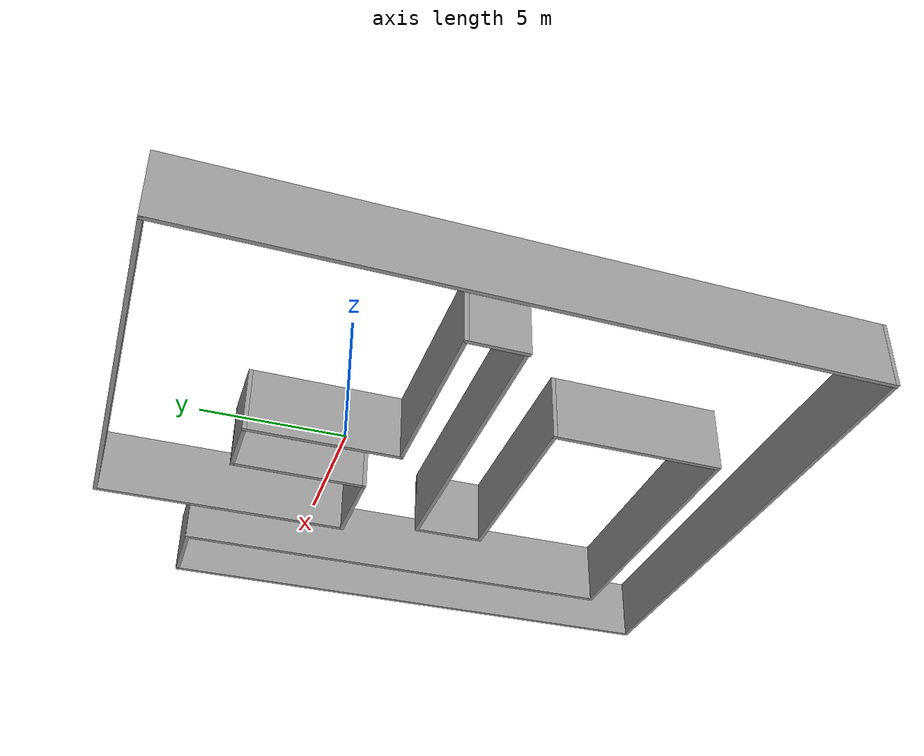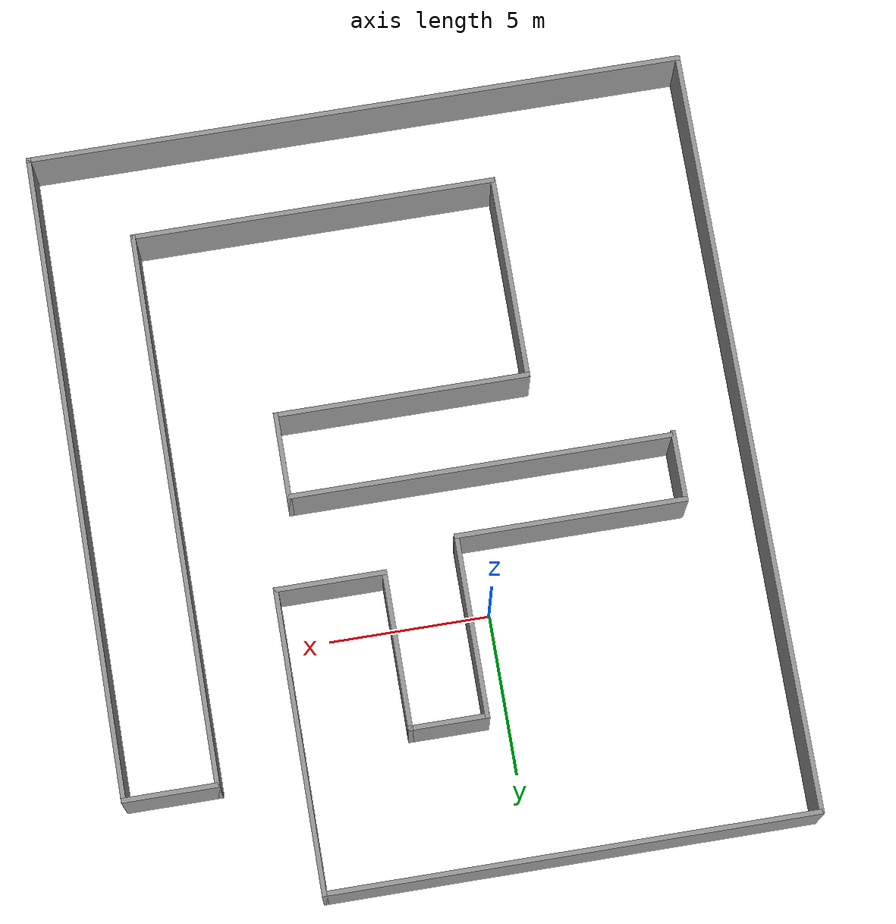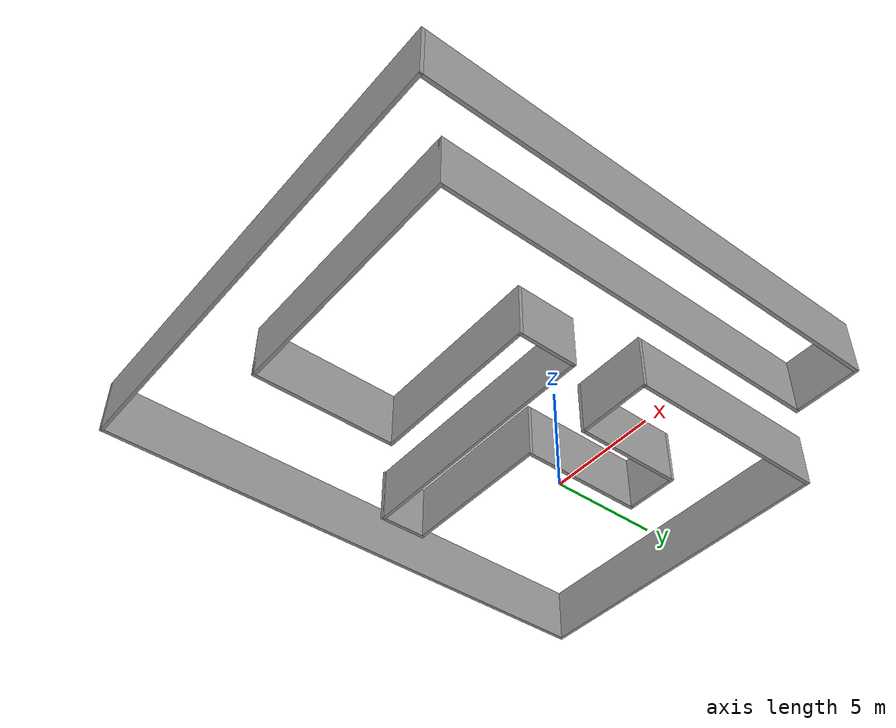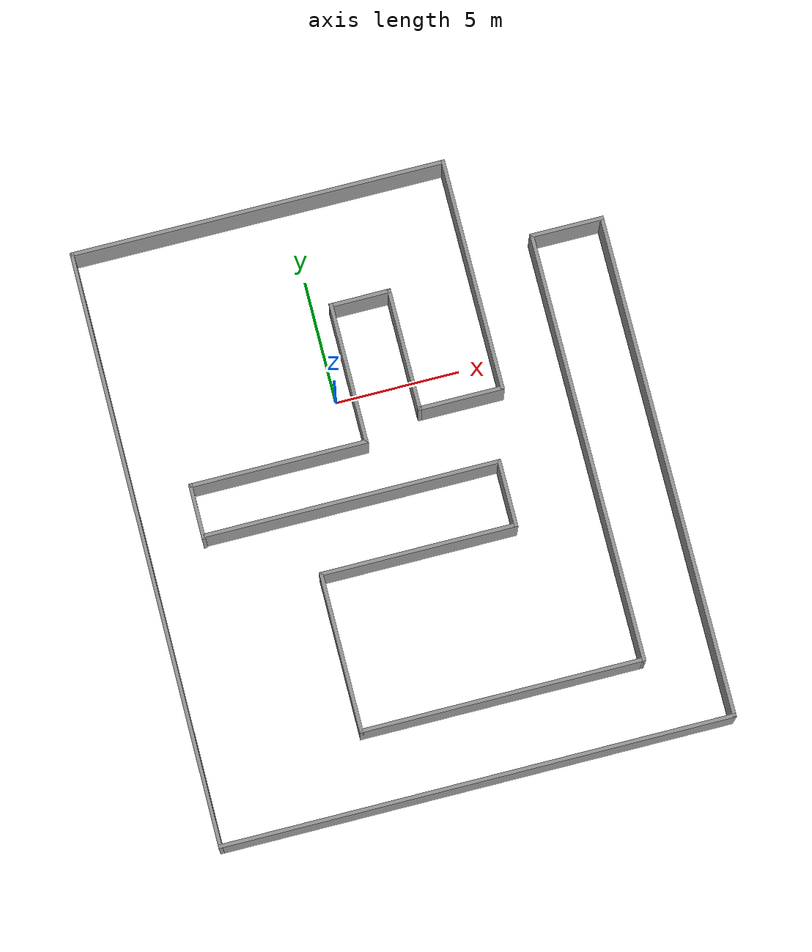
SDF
<?xml version='1.0'?>
<sdf version='1.7'>
  <model name='world1'>
    <pose>1.5821 -4.14424 0 0 -0 0</pose>
    <link name='Wall_0'>
      <collision name='Wall_0_Collision'>
        <geometry>
          <box>
            <size>12 0.15 2.5</size>
          </box>
        </geometry>
        <pose>0 0 1.25 0 -0 0</pose>
      </collision>
      <visual name='Wall_0_Visual'>
        <pose>0 0 1.25 0 -0 0</pose>
        <geometry>
          <box>
            <size>12 0.15 2.5</size>
          </box>
        </geometry>
        <material>
          <script>
            <uri>file://media/materials/scripts/gazebo.material</uri>
            <name>Gazebo/Grey</name>
          </script>
          <ambient>1 1 1 1</ambient>
        </material>
        <meta>
          <layer>0</layer>
        </meta>
      </visual>
      <pose>-1.975 -0.1 0 0 -0 0</pose>
    </link>
    <link name='Wall_1'>
      <collision name='Wall_1_Collision'>
        <geometry>
          <box>
            <size>2.75 0.15 2.5</size>
          </box>
        </geometry>
        <pose>0 0 1.25 0 -0 0</pose>
      </collision>
      <visual name='Wall_1_Visual'>
        <pose>0 0 1.25 0 -0 0</pose>
        <geometry>
          <box>
            <size>2.75 0.15 2.5</size>
          </box>
        </geometry>
        <material>
          <script>
            <uri>file://media/materials/scripts/gazebo.material</uri>
            <name>Gazebo/Grey</name>
          </script>
          <ambient>1 1 1 1</ambient>
        </material>
        <meta>
          <layer>0</layer>
        </meta>
      </visual>
      <pose>3.95 -1.4 0 0 -0 -1.5708</pose>
    </link>
    <link name='Wall_10'>
      <collision name='Wall_10_Collision'>
        <geometry>
          <box>
            <size>15.25 0.15 2.5</size>
          </box>
        </geometry>
        <pose>0 0 1.25 0 -0 0</pose>
      </collision>
      <visual name='Wall_10_Visual'>
        <pose>0 0 1.25 0 -0 0</pose>
        <geometry>
          <box>
            <size>15.25 0.15 2.5</size>
          </box>
        </geometry>
        <material>
          <script>
            <uri>file://media/materials/scripts/gazebo.material</uri>
            <name>Gazebo/Grey</name>
          </script>
          <ambient>1 1 1 1</ambient>
        </material>
        <meta>
          <layer>0</layer>
        </meta>
      </visual>
      <pose>-2.75 12.05 0 0 -0 0</pose>
    </link>
    <link name='Wall_11'>
      <collision name='Wall_11_Collision'>
        <geometry>
          <box>
            <size>9.5 0.15 2.5</size>
          </box>
        </geometry>
        <pose>0 0 1.25 0 -0 0</pose>
      </collision>
      <visual name='Wall_11_Visual'>
        <pose>0 0 1.25 0 -0 0</pose>
        <geometry>
          <box>
            <size>9.5 0.15 2.5</size>
          </box>
        </geometry>
        <material>
          <script>
            <uri>file://media/materials/scripts/gazebo.material</uri>
            <name>Gazebo/Grey</name>
          </script>
          <ambient>1 1 1 1</ambient>
        </material>
        <meta>
          <layer>0</layer>
        </meta>
      </visual>
      <pose>4.8 7.375 0 0 -0 -1.5708</pose>
    </link>
    <link name='Wall_12'>
      <collision name='Wall_12_Collision'>
        <geometry>
          <box>
            <size>3.5 0.15 2.5</size>
          </box>
        </geometry>
        <pose>0 0 1.25 0 -0 0</pose>
      </collision>
      <visual name='Wall_12_Visual'>
        <pose>0 0 1.25 0 -0 0</pose>
        <geometry>
          <box>
            <size>3.5 0.15 2.5</size>
          </box>
        </geometry>
        <material>
          <script>
            <uri>file://media/materials/scripts/gazebo.material</uri>
            <name>Gazebo/Grey</name>
          </script>
          <ambient>1 1 1 1</ambient>
        </material>
        <meta>
          <layer>0</layer>
        </meta>
      </visual>
      <pose>3.125 2.7 0 0 -0 3.14159</pose>
    </link>
    <link name='Wall_13'>
      <collision name='Wall_13_Collision'>
        <geometry>
          <box>
            <size>5 0.15 2.5</size>
          </box>
        </geometry>
        <pose>0 0 1.25 0 -0 0</pose>
      </collision>
      <visual name='Wall_13_Visual'>
        <pose>0 0 1.25 0 -0 0</pose>
        <geometry>
          <box>
            <size>5 0.15 2.5</size>
          </box>
        </geometry>
        <material>
          <script>
            <uri>file://media/materials/scripts/gazebo.material</uri>
            <name>Gazebo/Grey</name>
          </script>
          <ambient>1 1 1 1</ambient>
        </material>
        <meta>
          <layer>0</layer>
        </meta>
      </visual>
      <pose>1.45 5.125 0 0 -0 1.5708</pose>
    </link>
    <link name='Wall_14'>
      <collision name='Wall_14_Collision'>
        <geometry>
          <box>
            <size>2.5 0.15 2.5</size>
          </box>
        </geometry>
        <pose>0 0 1.25 0 -0 0</pose>
      </collision>
      <visual name='Wall_14_Visual'>
        <pose>0 0 1.25 0 -0 0</pose>
        <geometry>
          <box>
            <size>2.5 0.15 2.5</size>
          </box>
        </geometry>
        <material>
          <script>
            <uri>file://media/materials/scripts/gazebo.material</uri>
            <name>Gazebo/Grey</name>
          </script>
          <ambient>1 1 1 1</ambient>
        </material>
        <meta>
          <layer>0</layer>
        </meta>
      </visual>
      <pose>0.275 7.55 0 0 -0 3.14159</pose>
    </link>
    <link name='Wall_15'>
      <collision name='Wall_15_Collision'>
        <geometry>
          <box>
            <size>5.75 0.15 2.5</size>
          </box>
        </geometry>
        <pose>0 0 1.25 0 -0 0</pose>
      </collision>
      <visual name='Wall_15_Visual'>
        <pose>0 0 1.25 0 -0 0</pose>
        <geometry>
          <box>
            <size>5.75 0.15 2.5</size>
          </box>
        </geometry>
        <material>
          <script>
            <uri>file://media/materials/scripts/gazebo.material</uri>
            <name>Gazebo/Grey</name>
          </script>
          <ambient>1 1 1 1</ambient>
        </material>
        <meta>
          <layer>0</layer>
        </meta>
      </visual>
      <pose>-0.9 4.75 0 0 -0 -1.5708</pose>
    </link>
    <link name='Wall_16'>
      <collision name='Wall_16_Collision'>
        <geometry>
          <box>
            <size>7.25 0.15 2.5</size>
          </box>
        </geometry>
        <pose>0 0 1.25 0 -0 0</pose>
      </collision>
      <visual name='Wall_16_Visual'>
        <pose>0 0 1.25 0 -0 0</pose>
        <geometry>
          <box>
            <size>7.25 0.15 2.5</size>
          </box>
        </geometry>
        <material>
          <script>
            <uri>file://media/materials/scripts/gazebo.material</uri>
            <name>Gazebo/Grey</name>
          </script>
          <ambient>1 1 1 1</ambient>
        </material>
        <meta>
          <layer>0</layer>
        </meta>
      </visual>
      <pose>-4.45 1.95 0 0 -0 3.14159</pose>
    </link>
    <link name='Wall_19'>
      <collision name='Wall_19_Collision'>
        <geometry>
          <box>
            <size>2.25 0.15 2.5</size>
          </box>
        </geometry>
        <pose>0 0 1.25 0 -0 0</pose>
      </collision>
      <visual name='Wall_19_Visual'>
        <pose>0 0 1.25 0 -0 0</pose>
        <geometry>
          <box>
            <size>2.25 0.15 2.5</size>
          </box>
        </geometry>
        <material>
          <script>
            <uri>file://media/materials/scripts/gazebo.material</uri>
            <name>Gazebo/Grey</name>
          </script>
          <ambient>1 1 1 1</ambient>
        </material>
        <meta>
          <layer>0</layer>
        </meta>
      </visual>
      <pose>-8 0.9 0 0 -0 -1.5708</pose>
    </link>
    <link name='Wall_2'>
      <collision name='Wall_2_Collision'>
        <geometry>
          <box>
            <size>8 0.15 2.5</size>
          </box>
        </geometry>
        <pose>0 0 1.25 0 -0 0</pose>
      </collision>
      <visual name='Wall_2_Visual'>
        <pose>0 0 1.25 0 -0 0</pose>
        <geometry>
          <box>
            <size>8 0.15 2.5</size>
          </box>
        </geometry>
        <material>
          <script>
            <uri>file://media/materials/scripts/gazebo.material</uri>
            <name>Gazebo/Grey</name>
          </script>
          <ambient>1 1 1 1</ambient>
        </material>
        <meta>
          <layer>0</layer>
        </meta>
      </visual>
      <pose>0.025 -2.7 0 0 -0 3.14159</pose>
    </link>
    <link name='Wall_3'>
      <collision name='Wall_3_Collision'>
        <geometry>
          <box>
            <size>6.5 0.15 2.5</size>
          </box>
        </geometry>
        <pose>0 0 1.25 0 -0 0</pose>
      </collision>
      <visual name='Wall_3_Visual'>
        <pose>0 0 1.25 0 -0 0</pose>
        <geometry>
          <box>
            <size>6.5 0.15 2.5</size>
          </box>
        </geometry>
        <material>
          <script>
            <uri>file://media/materials/scripts/gazebo.material</uri>
            <name>Gazebo/Grey</name>
          </script>
          <ambient>1 1 1 1</ambient>
        </material>
        <meta>
          <layer>0</layer>
        </meta>
      </visual>
      <pose>-3.9 -5.875 0 0 -0 -1.5708</pose>
    </link>
    <link name='Wall_4'>
      <collision name='Wall_4_Collision'>
        <geometry>
          <box>
            <size>11.5 0.15 2.5</size>
          </box>
        </geometry>
        <pose>0 0 1.25 0 -0 0</pose>
      </collision>
      <visual name='Wall_4_Visual'>
        <pose>0 0 1.25 0 -0 0</pose>
        <geometry>
          <box>
            <size>11.5 0.15 2.5</size>
          </box>
        </geometry>
        <material>
          <script>
            <uri>file://media/materials/scripts/gazebo.material</uri>
            <name>Gazebo/Grey</name>
          </script>
          <ambient>1 1 1 1</ambient>
        </material>
        <meta>
          <layer>0</layer>
        </meta>
      </visual>
      <pose>1.775 -9.05 0 0 -0 0</pose>
    </link>
    <link name='Wall_5'>
      <collision name='Wall_5_Collision'>
        <geometry>
          <box>
            <size>17.5 0.15 2.5</size>
          </box>
        </geometry>
        <pose>0 0 1.25 0 -0 0</pose>
      </collision>
      <visual name='Wall_5_Visual'>
        <pose>0 0 1.25 0 -0 0</pose>
        <geometry>
          <box>
            <size>17.5 0.15 2.5</size>
          </box>
        </geometry>
        <material>
          <script>
            <uri>file://media/materials/scripts/gazebo.material</uri>
            <name>Gazebo/Grey</name>
          </script>
          <ambient>1 1 1 1</ambient>
        </material>
        <meta>
          <layer>0</layer>
        </meta>
      </visual>
      <pose>7.45 -0.375 0 0 -0 1.5708</pose>
    </link>
    <link name='Wall_6'>
      <collision name='Wall_6_Collision'>
        <geometry>
          <box>
            <size>3 0.15 2.5</size>
          </box>
        </geometry>
        <pose>0 0 1.25 0 -0 0</pose>
      </collision>
      <visual name='Wall_6_Visual'>
        <pose>0 0 1.25 0 -0 0</pose>
        <geometry>
          <box>
            <size>3 0.15 2.5</size>
          </box>
        </geometry>
        <material>
          <script>
            <uri>file://media/materials/scripts/gazebo.material</uri>
            <name>Gazebo/Grey</name>
          </script>
          <ambient>1 1 1 1</ambient>
        </material>
        <meta>
          <layer>0</layer>
        </meta>
      </visual>
      <pose>8.875 8.3 0 0 -0 0</pose>
    </link>
    <link name='Wall_7'>
      <collision name='Wall_7_Collision'>
        <geometry>
          <box>
            <size>20.5 0.15 2.5</size>
          </box>
        </geometry>
        <pose>0 0 1.25 0 -0 0</pose>
      </collision>
      <visual name='Wall_7_Visual'>
        <pose>0 0 1.25 0 -0 0</pose>
        <geometry>
          <box>
            <size>20.5 0.15 2.5</size>
          </box>
        </geometry>
        <material>
          <script>
            <uri>file://media/materials/scripts/gazebo.material</uri>
            <name>Gazebo/Grey</name>
          </script>
          <ambient>1 1 1 1</ambient>
        </material>
        <meta>
          <layer>0</layer>
        </meta>
      </visual>
      <pose>10.3 -1.875 0 0 -0 -1.5708</pose>
    </link>
    <link name='Wall_8'>
      <collision name='Wall_8_Collision'>
        <geometry>
          <box>
            <size>20.75 0.15 2.5</size>
          </box>
        </geometry>
        <pose>0 0 1.25 0 -0 0</pose>
      </collision>
      <visual name='Wall_8_Visual'>
        <pose>0 0 1.25 0 -0 0</pose>
        <geometry>
          <box>
            <size>20.75 0.15 2.5</size>
          </box>
        </geometry>
        <material>
          <script>
            <uri>file://media/materials/scripts/gazebo.material</uri>
            <name>Gazebo/Grey</name>
          </script>
          <ambient>1 1 1 1</ambient>
        </material>
        <meta>
          <layer>0</layer>
        </meta>
      </visual>
      <pose>0 -12.05 0 0 -0 3.14159</pose>
    </link>
    <link name='Wall_9'>
      <collision name='Wall_9_Collision'>
        <geometry>
          <box>
            <size>24.25 0.15 2.5</size>
          </box>
        </geometry>
        <pose>0 0 1.25 0 -0 0</pose>
      </collision>
      <visual name='Wall_9_Visual'>
        <pose>0 0 1.25 0 -0 0</pose>
        <geometry>
          <box>
            <size>24.25 0.15 2.5</size>
          </box>
        </geometry>
        <material>
          <script>
            <uri>file://media/materials/scripts/gazebo.material</uri>
            <name>Gazebo/Grey</name>
          </script>
          <ambient>1 1 1 1</ambient>
        </material>
        <meta>
          <layer>0</layer>
        </meta>
      </visual>
      <pose>-10.3 -0 0 0 -0 1.5708</pose>
    </link>
    <static>1</static>
  </model>
</sdf>
